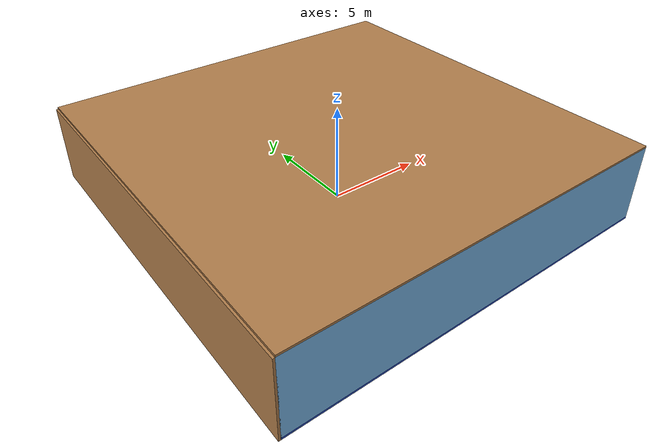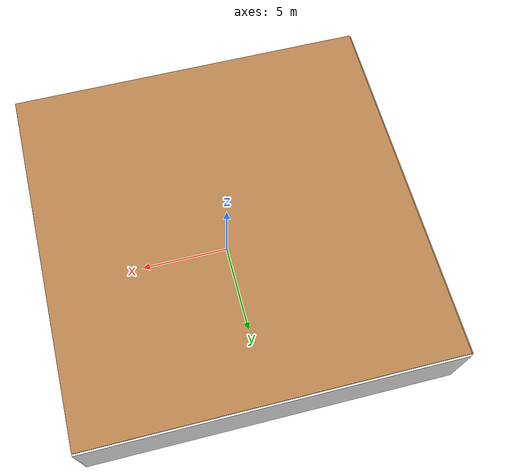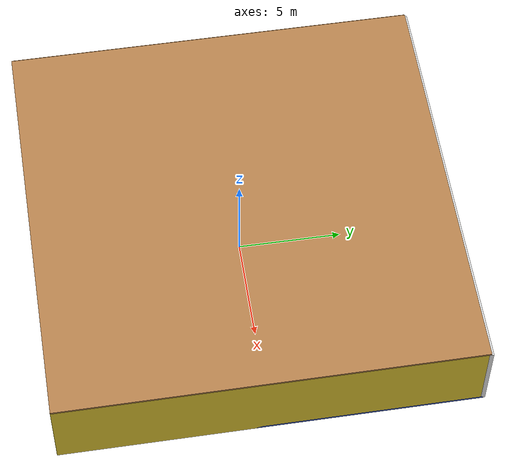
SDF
<sdf version="1.4">
 <world name="default">
  <physics type="ode">
   <max_step_size>0.001</max_step_size>
   <real_time_factor>1</real_time_factor>
   <real_time_update_rate>1000</real_time_update_rate>
   <gravity>0 0 -9.8</gravity>
  </physics>
  <scene><ambient>0.4 0.4 0.4 1</ambient><background>0.7 0.7 0.7 1</background><shadows>1</shadows></scene>
  <model name="Surrounding">
   <static>1</static>
   <link name="Ceiling">
    <collision name="Ceiling_Collision"><geometry><box><size>20 20 0.1</size></box></geometry></collision>
    <visual name="Ceiling_Visual">
     <geometry><box><size>20 20 0.1</size></box></geometry>
     <material>
      <script><uri>file://media/materials/scripts/gazebo.material</uri><name>Gazebo/Wood</name></script>
     </material>
    </visual>
    <pose>0 0 4.05 0 0 0</pose>
   </link>
   <link name="Wall_South">
    <collision name="Wall_South_Collision">
     <geometry><box><size>20 0 4</size></box></geometry>
     <pose>0 0 2 0 -0 0</pose>
    </collision>
    <visual name="Wall_South_Visual">
     <pose>0 0 2 0 -0 0</pose>
     <geometry><box><size>20 0 4</size></box></geometry>
     <material>
      <script><uri>file://media/materials/scripts/gazebo.material</uri><name>Gazebo/SkyBlue</name></script>
     </material>
    </visual>
    <velocity_decay><linear>0</linear><angular>0</angular></velocity_decay>
    <pose>0 -10 0 0 -0 0</pose>
   </link>
   <link name="Wall_East">
    <collision name="Wall_21_Collision">
     <geometry><box><size>20 0 4</size></box></geometry>
     <pose>0 0 2 0 -0 0</pose>
    </collision>
    <visual name="Wall_21_Visual">
     <pose>0 0 2 0 -0 0</pose>
     <geometry><box><size>20 0 4</size></box></geometry>
     <material>
      <script><uri>file://media/materials/scripts/gazebo.material</uri><name>Gazebo/ZincYellow</name></script>
     </material>
    </visual>
    <velocity_decay><linear>0</linear><angular>0</angular></velocity_decay>
    <pose>10 0 0 0 -0 1.5708</pose>
   </link>
   <link name="Wall_North">
    <collision name="Wall_22_Collision">
     <geometry><box><size>20 0.2 4</size></box></geometry>
     <pose>0 0 2 0 -0 0</pose>
    </collision>
    <visual name="Wall_22_Visual">
     <pose>0 0 2 0 -0 0</pose>
     <geometry><box><size>20 0.2 4</size></box></geometry>
     <material>
      <script><uri>file://media/materials/scripts/gazebo.material</uri><name>Gazebo/WhiteGlow</name></script>
     </material>
    </visual>
    <velocity_decay><linear>0</linear><angular>0</angular></velocity_decay>
    <pose>0 10 0 0 -0 0</pose>
   </link>
   <link name="Wall_West">
    <collision name="Wall_23_Collision">
     <geometry><box><size>20 0.2 4</size></box></geometry>
     <pose>0 0 2 0 -0 0</pose>
    </collision>
    <visual name="Wall_23_Visual">
     <pose>0 0 2 0 -0 0</pose>
     <geometry><box><size>20 0.2 4</size></box></geometry>
     <material>
      <script><uri>file://media/materials/scripts/gazebo.material</uri><name>Gazebo/WoodFloor</name></script>
     </material>
    </visual>
    <velocity_decay><linear>0</linear><angular>0</angular></velocity_decay>
    <pose>-10 0 0 0 0 -1.5708</pose>
   </link>
   <link name="Ground_link">
    <collision name="collision">
     <pose>0 0 .05 0 -0 0</pose>
     <geometry><box><size>20 20 0.1</size></box></geometry>
    </collision>
    <visual name="visual">
     <pose>0 0 .05 0 -0 0</pose>
     <geometry><box><size>20 20 0.1</size></box></geometry>
     <material>
      <script><uri>file://media/materials/scripts/gazebo.material</uri><name>Gazebo/BlueGlow</name></script>
     </material>
    </visual>
   </link>
   <static>1</static>
  </model>
  <spherical_coordinates>
   <surface_model>EARTH_WGS84</surface_model>
   <latitude_deg>0</latitude_deg>
   <longitude_deg>0</longitude_deg>
   <elevation>0</elevation>
   <heading_deg>0</heading_deg>
  </spherical_coordinates>
  <light name="lightball_0" type="diffuse">
   <diffuse>0.8 0.8 0.8 1</diffuse>
   <specular>0.2 0.2 0.2 1</specular>
   <attenuation>
    <range>100</range>
    <constant>0.7</constant>
    <linear>0.01</linear>
    <quadratic>0.001</quadratic>
   </attenuation>
   <direction>-0.5 0.1 -0.9</direction>
   <pose>-2.98626554578 3.4995219666 1.85147477968 0 0 0</pose>
  </light>
  <light name="lightball_1" type="diffuse">
   <diffuse>0.8 0.8 0.8 1</diffuse>
   <specular>0.2 0.2 0.2 1</specular>
   <attenuation>
    <range>100</range>
    <constant>0.7</constant>
    <linear>0.01</linear>
    <quadratic>0.001</quadratic>
   </attenuation>
   <direction>-0.5 0.1 -0.9</direction>
   <pose>-0.648033710502 9.52807247543 2.78344307001 0 0 0</pose>
  </light>
  <light name="lightball_2" type="diffuse">
   <diffuse>0.8 0.8 0.8 1</diffuse>
   <specular>0.2 0.2 0.2 1</specular>
   <attenuation>
    <range>100</range>
    <constant>0.7</constant>
    <linear>0.01</linear>
    <quadratic>0.001</quadratic>
   </attenuation>
   <direction>-0.5 0.1 -0.9</direction>
   <pose>-4.91030250709 -0.712701921937 1.24034270791 0 0 0</pose>
  </light>
  <include><uri>model://cabinet</uri><pose>-6.55920113369 -5.52546745267 0 0 0 2.60866925049</pose></include>
  <include><uri>model://table</uri><pose>-4.99575949752 -5.11579588151 0 0 0 0.375698552319</pose></include>
  <include><uri>model://cabinet</uri><pose>-0.373937638894 1.18957830923 0 0 0 0.341092889969</pose></include>
  <include>
   <uri>model://textured_shapes</uri>
   <pose>3.71012975839 -0.640244365347 0 0 0 1.83224027154</pose>
  </include>
  <include><uri>model://table</uri><pose>6.75907190211 -0.831659452515 0 0 0 0.657304537239</pose></include>
  <include><uri>model://table</uri><pose>7.24622153569 0.315636486923 0 0 0 0.389922980157</pose></include>
 </world>
</sdf>

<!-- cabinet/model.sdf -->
<sdf version="1.5">
  <model name="cabinet">
    <static>true</static>
    <link name="cabinet_bottom_plate">
      <inertial>
        <pose>0 0 -1 0 0 0</pose>
        <inertia>
          <ixx>2.050000</ixx>
          <ixy>0</ixy>
          <ixz>0</ixz>
          <iyy>2.050000</iyy>
          <iyz>0</iyz>
          <izz>2.050000</izz>
        </inertia>
        <mass>25.000000</mass>
      </inertial>
      <collision name="cabinet_bottom_plate_geom">
        <pose>0 0 0.010000 0 0 0</pose>
        <geometry>
          <box>
            <size>0.450000 0.450000 0.020000</size>
          </box>
        </geometry>
      </collision>
      <visual name="cabinet_bottom_plate_geom_visual">
        <pose>0 0 0.010000 0 0 0</pose>
        <geometry>
          <box>
            <size>0.450000 0.450000 0.020000</size>
          </box>
        </geometry>
        <material>
          <script>
            <uri>model://media/materials/scripts/gazebo.material</uri>
            <name>Gazebo/Wood</name>
          </script>
        </material>
      </visual>
      <collision name="cabinet_bottom_plate_geom_cabinet_back_plate">
        <pose>0.235000 0 0.510000 0 0 0</pose>
        <geometry>
          <box>
            <size>0.020000 0.450000 1.020000</size>
          </box>
        </geometry>
      </collision>
      <visual name="cabinet_bottom_plate_geom_cabinet_back_plate_visual">
        <pose>0.235000 0 0.510000 0 0 0</pose>
        <geometry>
          <box>
            <size>0.020000 0.450000 1.020000</size>
          </box>
        </geometry>
        <material>
          <script>
            <uri>model://media/materials/scripts/gazebo.material</uri>
            <name>Gazebo/Wood</name>
          </script>
        </material>
      </visual>
      <collision name="cabinet_bottom_plate_geom_cabinet_left_plate">
        <pose>0 0.235000 0.510000 0 0 0</pose>
        <geometry>
          <box>
            <size>0.450000 0.020000 1.020000</size>
          </box>
        </geometry>
      </collision>
      <visual name="cabinet_bottom_plate_geom_cabinet_left_plate_visual">
        <pose>0 0.235000 0.510000 0 0 0</pose>
        <geometry>
          <box>
            <size>0.450000 0.020000 1.020000</size>
          </box>
        </geometry>
        <material>
          <script>
            <uri>model://media/materials/scripts/gazebo.material</uri>
            <name>Gazebo/Wood</name>
          </script>
        </material>
      </visual>
      <collision name="cabinet_bottom_plate_geom_cabinet_middle_plate">
        <pose>0 0 0.510000 0 0 0</pose>
        <geometry>
          <box>
            <size>0.450000 0.450000 0.020000</size>
          </box>
        </geometry>
      </collision>
      <visual name="cabinet_bottom_plate_geom_cabinet_middle_plate_visual">
        <pose>0 0 0.510000 0 0 0</pose>
        <geometry>
          <box>
            <size>0.450000 0.450000 0.020000</size>
          </box>
        </geometry>
        <material>
          <script>
            <uri>model://media/materials/scripts/gazebo.material</uri>
            <name>Gazebo/Wood</name>
          </script>
        </material>
      </visual>
      <collision name="cabinet_bottom_plate_geom_cabinet_right_plate">
        <pose>0 -0.235000 0.510000 0 0 0</pose>
        <geometry>
          <box>
            <size>0.450000 0.020000 1.020000</size>
          </box>
        </geometry>
      </collision>
      <visual name="cabinet_bottom_plate_geom_cabinet_right_plate_visual">
        <pose>0 -0.235000 0.510000 0 0 0</pose>
        <geometry>
          <box>
            <size>0.450000 0.020000 1.020000</size>
          </box>
        </geometry>
        <material>
          <script>
            <uri>model://media/materials/scripts/gazebo.material</uri>
            <name>Gazebo/Wood</name>
          </script>
        </material>
      </visual>
      <collision name="cabinet_bottom_plate_geom_cabinet_top_plate">
        <pose>0 0 1.010000 0 0 0</pose>
        <geometry>
          <box>
            <size>0.450000 0.450000 0.020000</size>
          </box>
        </geometry>
      </collision>
      <visual name="cabinet_bottom_plate_geom_cabinet_top_plate_visual">
        <pose>0 0 1.010000 0 0 0</pose>
        <geometry>
          <box>
            <size>0.450000 0.450000 0.020000</size>
          </box>
        </geometry>
        <material>
          <script>
            <uri>model://media/materials/scripts/gazebo.material</uri>
            <name>Gazebo/Wood</name>
          </script>
        </material>
      </visual>
    </link>
  </model>
</sdf>

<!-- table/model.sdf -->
<sdf version="1.5">
  <model name="table">
    <static>true</static>
    <link name="link">
      <collision name="surface">
        <pose>0 0 1.0 0 0 0</pose>
        <geometry>
          <box>
            <size>1.5 0.8 0.03</size>
          </box>
        </geometry>
        <surface>
          <friction>
            <ode>
              <mu>0.6</mu>
              <mu2>0.6</mu2>
            </ode>
          </friction>
        </surface>
      </collision>
      <visual name="visual1">
        <pose>0 0 1.0 0 0 0</pose>
        <geometry>
          <box>
            <size>1.5 0.8 0.03</size>
          </box>
        </geometry>
        <material>
          <script>
            <uri>model://media/materials/scripts/gazebo.material</uri>
            <name>Gazebo/Wood</name>
          </script>
        </material>
      </visual>
      <collision name="front_left_leg">
        <pose>0.68 0.38 0.5 0 0 0</pose>
        <geometry>
          <cylinder>
            <radius>0.02</radius>
            <length>1.0</length>
          </cylinder>
        </geometry>
      </collision>
      <visual name="front_left_leg">
        <pose>0.68 0.38 0.5 0 0 0</pose>
        <geometry>
          <cylinder>
            <radius>0.02</radius>
            <length>1.0</length>
          </cylinder>
        </geometry>
        <material>
          <script>
            <uri>model://media/materials/scripts/gazebo.material</uri>
            <name>Gazebo/Grey</name>
          </script>
        </material>
      </visual>
      <collision name="front_right_leg">
        <pose>0.68 -0.38 0.5 0 0 0</pose>
        <geometry>
          <cylinder>
            <radius>0.02</radius>
            <length>1.0</length>
          </cylinder>
        </geometry>
      </collision>
      <visual name="front_right_leg">
        <pose>0.68 -0.38 0.5 0 0 0</pose>
        <geometry>
          <cylinder>
            <radius>0.02</radius>
            <length>1.0</length>
          </cylinder>
        </geometry>
        <material>
          <script>
            <uri>model://media/materials/scripts/gazebo.material</uri>
            <name>Gazebo/Grey</name>
          </script>
        </material>
      </visual>
      <collision name="back_right_leg">
        <pose>-0.68 -0.38 0.5 0 0 0</pose>
        <geometry>
          <cylinder>
            <radius>0.02</radius>
            <length>1.0</length>
          </cylinder>
        </geometry>
      </collision>
      <visual name="back_right_leg">
        <pose>-0.68 -0.38 0.5 0 0 0</pose>
        <geometry>
          <cylinder>
            <radius>0.02</radius>
            <length>1.0</length>
          </cylinder>
        </geometry>
        <material>
          <script>
            <uri>model://media/materials/scripts/gazebo.material</uri>
            <name>Gazebo/Grey</name>
          </script>
        </material>
      </visual>
      <collision name="back_left_leg">
        <pose>-0.68 0.38 0.5 0 0 0</pose>
        <geometry>
          <cylinder>
            <radius>0.02</radius>
            <length>1.0</length>
          </cylinder>
        </geometry>
      </collision>
      <visual name="back_left_leg">
        <pose>-0.68 0.38 0.5 0 0 0</pose>
        <geometry>
          <cylinder>
            <radius>0.02</radius>
            <length>1.0</length>
          </cylinder>
        </geometry>
        <material>
          <script>
            <uri>model://media/materials/scripts/gazebo.material</uri>
            <name>Gazebo/Grey</name>
          </script>
        </material>
      </visual>
    </link>
  </model>
</sdf>

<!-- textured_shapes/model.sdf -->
<sdf version="1.6">
  <model name="textured_shapes">
    <pose>0 0 0.5 0 0 0</pose>
    <link name="box">
      <pose>0 -1.5 0 0 0 0</pose>
      <collision name="collision">
        <geometry>
          <box>
            <size>1 1 1</size>
          </box>
        </geometry>
      </collision>
      <visual name="visual">
        <geometry>
          <box>
            <size>1 1 1</size>
          </box>
        </geometry>
        <material>
          <script>
            <uri>model://../model_source/models/textured_shapes/materials/scripts</uri>
            <uri>model://../model_source/models/textured_shapes/materials/textures</uri>
            <name>TexturedShape/Squares</name>
          </script>
        </material>
      </visual>
    </link>
    <link name="sphere">
      <collision name="collision">
        <geometry>
          <sphere>
            <radius>0.5</radius>
          </sphere>
        </geometry>
      </collision>
      <visual name="visual">
        <geometry>
          <sphere>
            <radius>0.5</radius>
          </sphere>
        </geometry>
        <material>
          <script>
            <uri>model://../model_source/models/textured_shapes/materials/scripts</uri>
            <uri>model://../model_source/models/textured_shapes/materials/textures</uri>
            <name>TexturedShape/Squares</name>
          </script>
        </material>
      </visual>
    </link>
    <link name="cylinder">
      <pose>0 1.5 0 0 0 0</pose>
      <collision name="collision">
        <geometry>
          <cylinder>
            <radius>0.5</radius>
            <length>1</length>
          </cylinder>
        </geometry>
      </collision>
      <visual name="visual">
        <geometry>
          <cylinder>
            <radius>0.5</radius>
            <length>1</length>
          </cylinder>
        </geometry>
        <material>
          <script>
            <uri>model://../model_source/models/textured_shapes/materials/scripts</uri>
            <uri>model://../model_source/models/textured_shapes/materials/textures</uri>
            <name>TexturedShape/Squares</name>
          </script>
        </material>
      </visual>
    </link>
  </model>
</sdf>
